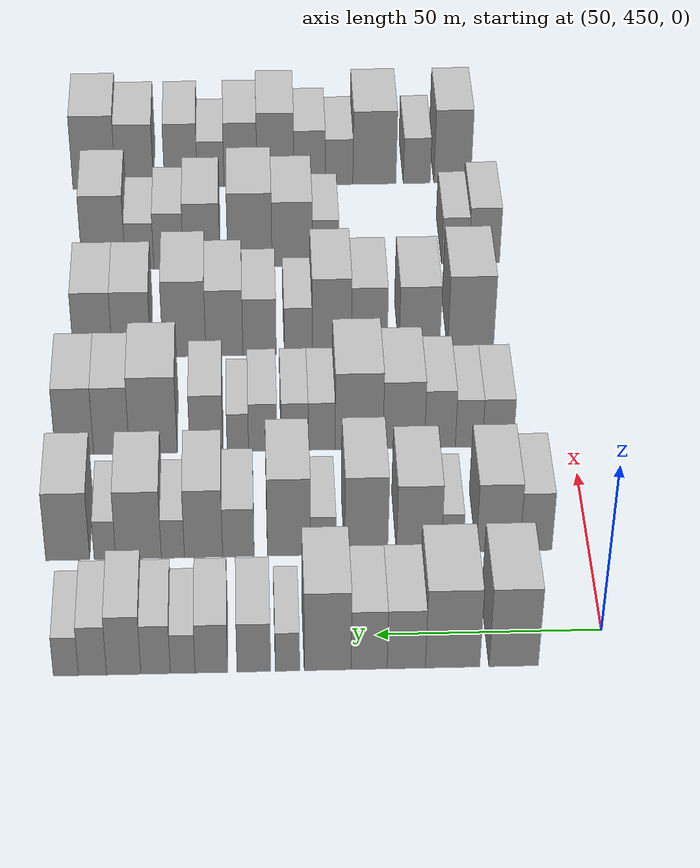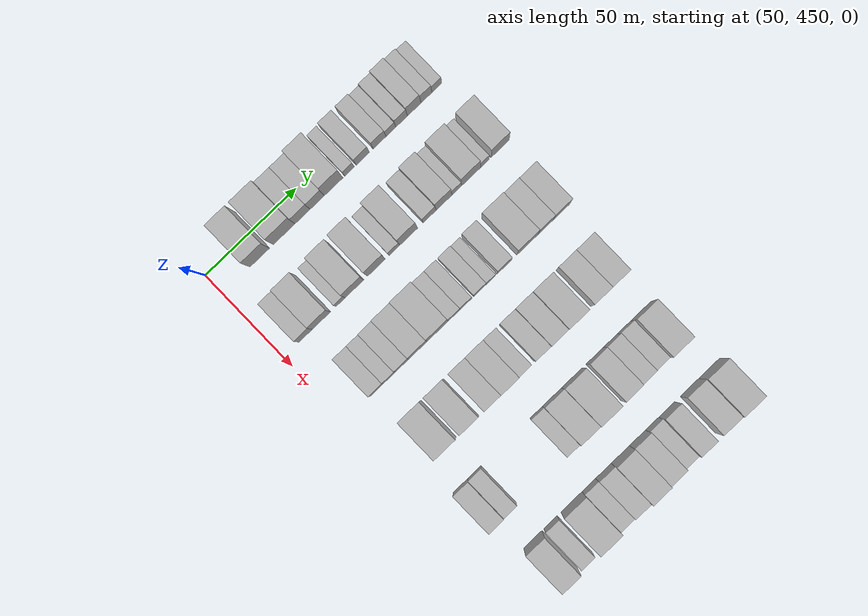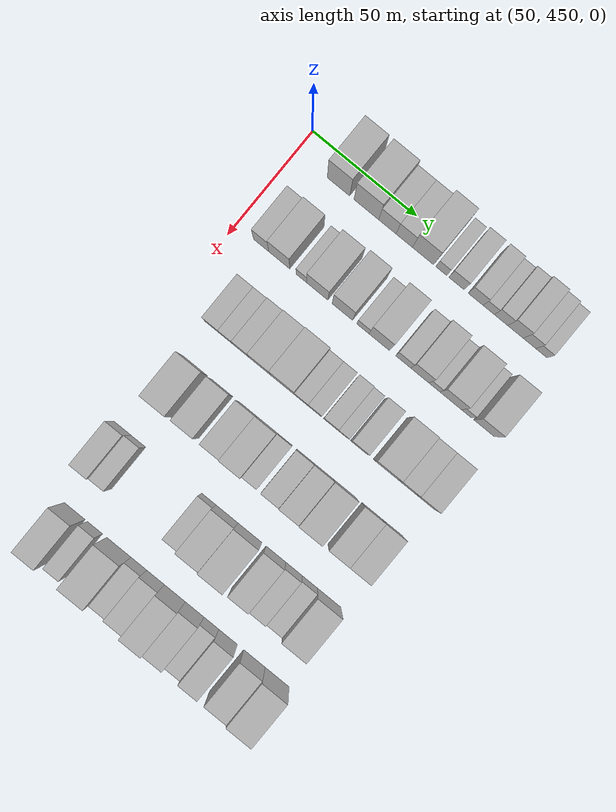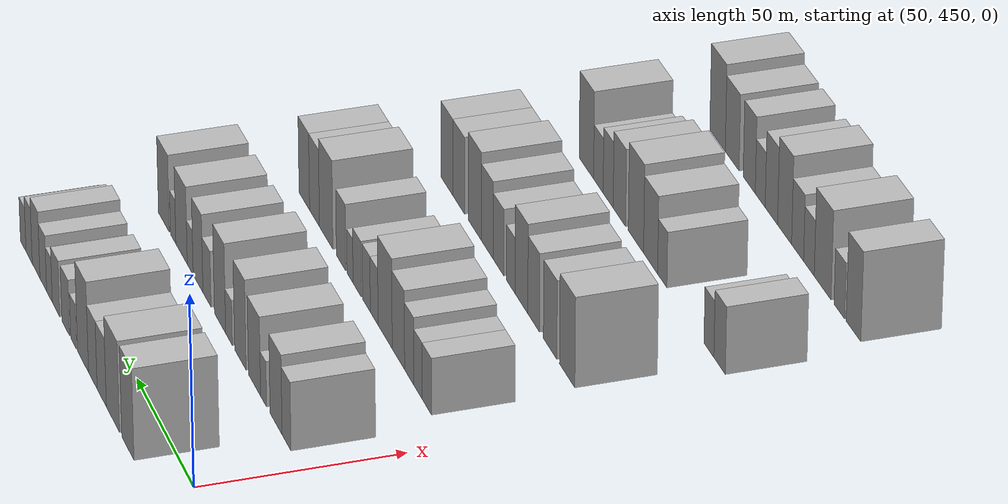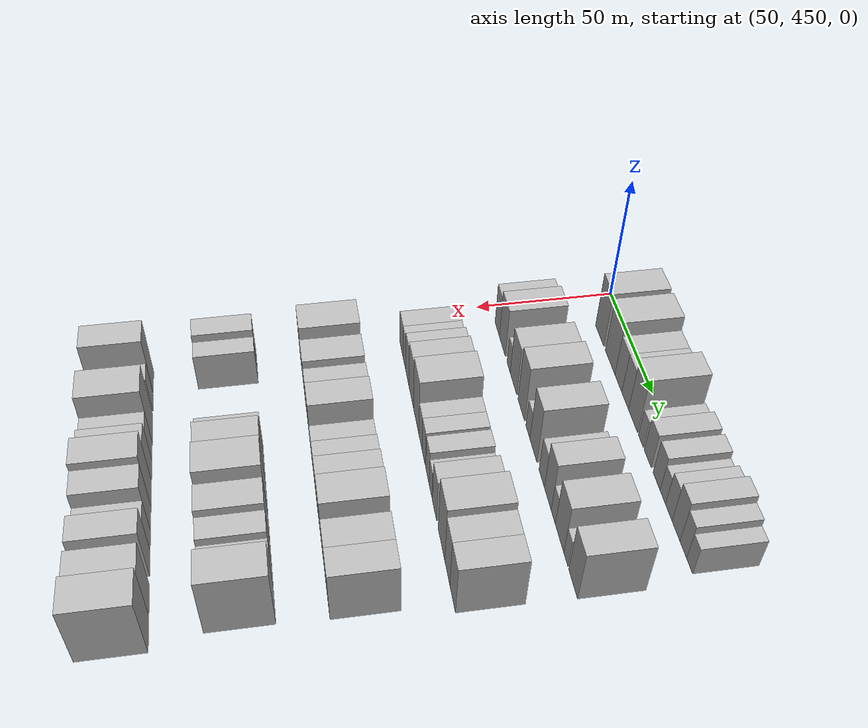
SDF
<sdf version="1.6">
 <world name="default">
  <model name="building_113">
   <static>1</static>
   <pose>50.0000 470.5471 0 0.000000 0.000000 0.000000</pose>
   <link name="link">
    <pose>0 0 12.00 0 0 0</pose>
    <collision name="collision"><geometry><box><size>20.0000 10.7727 24.0000</size></box></geometry></collision>
    <visual name="visual">
     <cast_shadows>0</cast_shadows>
     <geometry><box><size>20.0000 10.7727 24.0000</size></box></geometry>
     <material>
      <script>
       <uri>model://HANNAS_wall/materials/scripts</uri>
       <uri>model://HANNAS_wall/materials/textures</uri>
       <name>vrc/HANNAS_wall</name>
      </script>
     </material>
    </visual>
   </link>
  </model>
  <model name="building_114">
   <static>1</static>
   <pose>50.0000 483.8702 0 0.000000 0.000000 0.000000</pose>
   <link name="link">
    <pose>0 0 12.00 0 0 0</pose>
    <collision name="collision"><geometry><box><size>20.0000 11.8735 24.0000</size></box></geometry></collision>
    <visual name="visual">
     <cast_shadows>0</cast_shadows>
     <geometry><box><size>20.0000 11.8735 24.0000</size></box></geometry>
     <material>
      <script>
       <uri>model://HANNAS_wall/materials/scripts</uri>
       <uri>model://HANNAS_wall/materials/textures</uri>
       <name>vrc/HANNAS_wall</name>
      </script>
     </material>
    </visual>
   </link>
  </model>
  <model name="building_115">
   <static>1</static>
   <pose>50.0000 493.9722 0 0.000000 0.000000 0.000000</pose>
   <link name="link">
    <pose>0 0 9.00 0 0 0</pose>
    <collision name="collision"><geometry><box><size>20.0000 8.3305 18.0000</size></box></geometry></collision>
    <visual name="visual">
     <cast_shadows>0</cast_shadows>
     <geometry><box><size>20.0000 8.3305 18.0000</size></box></geometry>
     <material>
      <script>
       <uri>model://HANNAS_wall/materials/scripts</uri>
       <uri>model://HANNAS_wall/materials/textures</uri>
       <name>vrc/HANNAS_wall</name>
      </script>
     </material>
    </visual>
   </link>
  </model>
  <model name="building_116">
   <static>1</static>
   <pose>50.0000 502.0715 0 0.000000 0.000000 0.000000</pose>
   <link name="link">
    <pose>0 0 9.00 0 0 0</pose>
    <collision name="collision"><geometry><box><size>20.0000 7.8680 18.0000</size></box></geometry></collision>
    <visual name="visual">
     <cast_shadows>0</cast_shadows>
     <geometry><box><size>20.0000 7.8680 18.0000</size></box></geometry>
     <material>
      <script>
       <uri>model://HANNAS_wall/materials/scripts</uri>
       <uri>model://HANNAS_wall/materials/textures</uri>
       <name>vrc/HANNAS_wall</name>
      </script>
     </material>
    </visual>
   </link>
  </model>
  <model name="building_117">
   <static>1</static>
   <pose>50.0000 511.0846 0 0.000000 0.000000 0.000000</pose>
   <link name="link">
    <pose>0 0 12.00 0 0 0</pose>
    <collision name="collision"><geometry><box><size>20.0000 10.1583 24.0000</size></box></geometry></collision>
    <visual name="visual">
     <cast_shadows>0</cast_shadows>
     <geometry><box><size>20.0000 10.1583 24.0000</size></box></geometry>
     <material>
      <script>
       <uri>model://HANNAS_wall/materials/scripts</uri>
       <uri>model://HANNAS_wall/materials/textures</uri>
       <name>vrc/HANNAS_wall</name>
      </script>
     </material>
    </visual>
   </link>
  </model>
  <model name="building_118">
   <static>1</static>
   <pose>50.0000 519.8057 0 0.000000 0.000000 0.000000</pose>
   <link name="link">
    <pose>0 0 6.00 0 0 0</pose>
    <collision name="collision"><geometry><box><size>20.0000 5.2838 12.0000</size></box></geometry></collision>
    <visual name="visual">
     <cast_shadows>0</cast_shadows>
     <geometry><box><size>20.0000 5.2838 12.0000</size></box></geometry>
     <material>
      <script>
       <uri>model://HANNAS_wall/materials/scripts</uri>
       <uri>model://HANNAS_wall/materials/textures</uri>
       <name>vrc/HANNAS_wall</name>
      </script>
     </material>
    </visual>
   </link>
  </model>
  <model name="building_119">
   <static>1</static>
   <pose>50.0000 527.1045 0 0.000000 0.000000 0.000000</pose>
   <link name="link">
    <pose>0 0 7.50 0 0 0</pose>
    <collision name="collision"><geometry><box><size>20.0000 7.3138 15.0000</size></box></geometry></collision>
    <visual name="visual">
     <cast_shadows>0</cast_shadows>
     <geometry><box><size>20.0000 7.3138 15.0000</size></box></geometry>
     <material>
      <script>
       <uri>model://HANNAS_wall/materials/scripts</uri>
       <uri>model://HANNAS_wall/materials/textures</uri>
       <name>vrc/HANNAS_wall</name>
      </script>
     </material>
    </visual>
   </link>
  </model>
  <model name="building_120">
   <static>1</static>
   <pose>50.0000 536.3139 0 0.000000 0.000000 0.000000</pose>
   <link name="link">
    <pose>0 0 7.50 0 0 0</pose>
    <collision name="collision"><geometry><box><size>20.0000 7.1051 15.0000</size></box></geometry></collision>
    <visual name="visual">
     <cast_shadows>0</cast_shadows>
     <geometry><box><size>20.0000 7.1051 15.0000</size></box></geometry>
     <material>
      <script>
       <uri>model://HANNAS_wall/materials/scripts</uri>
       <uri>model://HANNAS_wall/materials/textures</uri>
       <name>vrc/HANNAS_wall</name>
      </script>
     </material>
    </visual>
   </link>
  </model>
  <model name="building_121">
   <static>1</static>
   <pose>50.0000 542.5565 0 0.000000 0.000000 0.000000</pose>
   <link name="link">
    <pose>0 0 6.00 0 0 0</pose>
    <collision name="collision"><geometry><box><size>20.0000 5.3800 12.0000</size></box></geometry></collision>
    <visual name="visual">
     <cast_shadows>0</cast_shadows>
     <geometry><box><size>20.0000 5.3800 12.0000</size></box></geometry>
     <material>
      <script>
       <uri>model://HANNAS_wall/materials/scripts</uri>
       <uri>model://HANNAS_wall/materials/textures</uri>
       <name>vrc/HANNAS_wall</name>
      </script>
     </material>
    </visual>
   </link>
  </model>
  <model name="building_122">
   <static>1</static>
   <pose>50.0000 548.4449 0 0.000000 0.000000 0.000000</pose>
   <link name="link">
    <pose>0 0 7.50 0 0 0</pose>
    <collision name="collision"><geometry><box><size>20.0000 6.3967 15.0000</size></box></geometry></collision>
    <visual name="visual">
     <cast_shadows>0</cast_shadows>
     <geometry><box><size>20.0000 6.3967 15.0000</size></box></geometry>
     <material>
      <script>
       <uri>model://HANNAS_wall/materials/scripts</uri>
       <uri>model://HANNAS_wall/materials/textures</uri>
       <name>vrc/HANNAS_wall</name>
      </script>
     </material>
    </visual>
   </link>
  </model>
  <model name="building_123">
   <static>1</static>
   <pose>50.0000 555.3638 0 0.000000 0.000000 0.000000</pose>
   <link name="link">
    <pose>0 0 9.00 0 0 0</pose>
    <collision name="collision"><geometry><box><size>20.0000 7.4411 18.0000</size></box></geometry></collision>
    <visual name="visual">
     <cast_shadows>0</cast_shadows>
     <geometry><box><size>20.0000 7.4411 18.0000</size></box></geometry>
     <material>
      <script>
       <uri>model://HANNAS_wall/materials/scripts</uri>
       <uri>model://HANNAS_wall/materials/textures</uri>
       <name>vrc/HANNAS_wall</name>
      </script>
     </material>
    </visual>
   </link>
  </model>
  <model name="building_124">
   <static>1</static>
   <pose>50.0000 562.1249 0 0.000000 0.000000 0.000000</pose>
   <link name="link">
    <pose>0 0 7.50 0 0 0</pose>
    <collision name="collision"><geometry><box><size>20.0000 6.0810 15.0000</size></box></geometry></collision>
    <visual name="visual">
     <cast_shadows>0</cast_shadows>
     <geometry><box><size>20.0000 6.0810 15.0000</size></box></geometry>
     <material>
      <script>
       <uri>model://HANNAS_wall/materials/scripts</uri>
       <uri>model://HANNAS_wall/materials/textures</uri>
       <name>vrc/HANNAS_wall</name>
      </script>
     </material>
    </visual>
   </link>
  </model>
  <model name="building_125">
   <static>1</static>
   <pose>50.0000 567.8764 0 0.000000 0.000000 0.000000</pose>
   <link name="link">
    <pose>0 0 6.00 0 0 0</pose>
    <collision name="collision"><geometry><box><size>20.0000 5.4219 12.0000</size></box></geometry></collision>
    <visual name="visual">
     <cast_shadows>0</cast_shadows>
     <geometry><box><size>20.0000 5.4219 12.0000</size></box></geometry>
     <material>
      <script>
       <uri>model://HANNAS_wall/materials/scripts</uri>
       <uri>model://HANNAS_wall/materials/textures</uri>
       <name>vrc/HANNAS_wall</name>
      </script>
     </material>
    </visual>
   </link>
  </model>
  <model name="building_241">
   <static>1</static>
   <pose>85.0000 462.2460 0 0.000000 0.000000 0.000000</pose>
   <link name="link">
    <pose>0 0 9.00 0 0 0</pose>
    <collision name="collision"><geometry><box><size>20.0000 7.3072 18.0000</size></box></geometry></collision>
    <visual name="visual">
     <cast_shadows>0</cast_shadows>
     <geometry><box><size>20.0000 7.3072 18.0000</size></box></geometry>
     <material>
      <script>
       <uri>model://HANNAS_wall/materials/scripts</uri>
       <uri>model://HANNAS_wall/materials/textures</uri>
       <name>vrc/HANNAS_wall</name>
      </script>
     </material>
    </visual>
   </link>
  </model>
  <model name="building_242">
   <static>1</static>
   <pose>85.0000 470.9040 0 0.000000 0.000000 0.000000</pose>
   <link name="link">
    <pose>0 0 10.50 0 0 0</pose>
    <collision name="collision"><geometry><box><size>20.0000 10.0088 21.0000</size></box></geometry></collision>
    <visual name="visual">
     <cast_shadows>0</cast_shadows>
     <geometry><box><size>20.0000 10.0088 21.0000</size></box></geometry>
     <material>
      <script>
       <uri>model://HANNAS_wall/materials/scripts</uri>
       <uri>model://HANNAS_wall/materials/textures</uri>
       <name>vrc/HANNAS_wall</name>
      </script>
     </material>
    </visual>
   </link>
  </model>
  <model name="building_243">
   <static>1</static>
   <pose>85.0000 481.3888 0 0.000000 0.000000 0.000000</pose>
   <link name="link">
    <pose>0 0 6.00 0 0 0</pose>
    <collision name="collision"><geometry><box><size>20.0000 4.9607 12.0000</size></box></geometry></collision>
    <visual name="visual">
     <cast_shadows>0</cast_shadows>
     <geometry><box><size>20.0000 4.9607 12.0000</size></box></geometry>
     <material>
      <script>
       <uri>model://HANNAS_wall/materials/scripts</uri>
       <uri>model://HANNAS_wall/materials/textures</uri>
       <name>vrc/HANNAS_wall</name>
      </script>
     </material>
    </visual>
   </link>
  </model>
  <model name="building_244">
   <static>1</static>
   <pose>85.0000 489.0123 0 0.000000 0.000000 0.000000</pose>
   <link name="link">
    <pose>0 0 10.50 0 0 0</pose>
    <collision name="collision"><geometry><box><size>20.0000 10.2861 21.0000</size></box></geometry></collision>
    <visual name="visual">
     <cast_shadows>0</cast_shadows>
     <geometry><box><size>20.0000 10.2861 21.0000</size></box></geometry>
     <material>
      <script>
       <uri>model://HANNAS_wall/materials/scripts</uri>
       <uri>model://HANNAS_wall/materials/textures</uri>
       <name>vrc/HANNAS_wall</name>
      </script>
     </material>
    </visual>
   </link>
  </model>
  <model name="building_245">
   <static>1</static>
   <pose>85.0000 501.0741 0 0.000000 0.000000 0.000000</pose>
   <link name="link">
    <pose>0 0 12.00 0 0 0</pose>
    <collision name="collision"><geometry><box><size>20.0000 9.8375 24.0000</size></box></geometry></collision>
    <visual name="visual">
     <cast_shadows>0</cast_shadows>
     <geometry><box><size>20.0000 9.8375 24.0000</size></box></geometry>
     <material>
      <script>
       <uri>model://HANNAS_wall/materials/scripts</uri>
       <uri>model://HANNAS_wall/materials/textures</uri>
       <name>vrc/HANNAS_wall</name>
      </script>
     </material>
    </visual>
   </link>
  </model>
  <model name="building_246">
   <static>1</static>
   <pose>85.0000 510.9015 0 0.000000 0.000000 0.000000</pose>
   <link name="link">
    <pose>0 0 6.00 0 0 0</pose>
    <collision name="collision"><geometry><box><size>20.0000 5.8173 12.0000</size></box></geometry></collision>
    <visual name="visual">
     <cast_shadows>0</cast_shadows>
     <geometry><box><size>20.0000 5.8173 12.0000</size></box></geometry>
     <material>
      <script>
       <uri>model://HANNAS_wall/materials/scripts</uri>
       <uri>model://HANNAS_wall/materials/textures</uri>
       <name>vrc/HANNAS_wall</name>
      </script>
     </material>
    </visual>
   </link>
  </model>
  <model name="building_247">
   <static>1</static>
   <pose>85.0000 518.7040 0 0.000000 0.000000 0.000000</pose>
   <link name="link">
    <pose>0 0 12.00 0 0 0</pose>
    <collision name="collision"><geometry><box><size>20.0000 9.7877 24.0000</size></box></geometry></collision>
    <visual name="visual">
     <cast_shadows>0</cast_shadows>
     <geometry><box><size>20.0000 9.7877 24.0000</size></box></geometry>
     <material>
      <script>
       <uri>model://HANNAS_wall/materials/scripts</uri>
       <uri>model://HANNAS_wall/materials/textures</uri>
       <name>vrc/HANNAS_wall</name>
      </script>
     </material>
    </visual>
   </link>
  </model>
  <model name="building_248">
   <static>1</static>
   <pose>85.0000 530.1975 0 0.000000 0.000000 0.000000</pose>
   <link name="link">
    <pose>0 0 7.50 0 0 0</pose>
    <collision name="collision"><geometry><box><size>20.0000 7.1994 15.0000</size></box></geometry></collision>
    <visual name="visual">
     <cast_shadows>0</cast_shadows>
     <geometry><box><size>20.0000 7.1994 15.0000</size></box></geometry>
     <material>
      <script>
       <uri>model://HANNAS_wall/materials/scripts</uri>
       <uri>model://HANNAS_wall/materials/textures</uri>
       <name>vrc/HANNAS_wall</name>
      </script>
     </material>
    </visual>
   </link>
  </model>
  <model name="building_249">
   <static>1</static>
   <pose>85.0000 538.1557 0 0.000000 0.000000 0.000000</pose>
   <link name="link">
    <pose>0 0 10.50 0 0 0</pose>
    <collision name="collision"><geometry><box><size>20.0000 8.7171 21.0000</size></box></geometry></collision>
    <visual name="visual">
     <cast_shadows>0</cast_shadows>
     <geometry><box><size>20.0000 8.7171 21.0000</size></box></geometry>
     <material>
      <script>
       <uri>model://HANNAS_wall/materials/scripts</uri>
       <uri>model://HANNAS_wall/materials/textures</uri>
       <name>vrc/HANNAS_wall</name>
      </script>
     </material>
    </visual>
   </link>
  </model>
  <model name="building_250">
   <static>1</static>
   <pose>85.0000 545.1428 0 0.000000 0.000000 0.000000</pose>
   <link name="link">
    <pose>0 0 6.00 0 0 0</pose>
    <collision name="collision"><geometry><box><size>20.0000 5.2572 12.0000</size></box></geometry></collision>
    <visual name="visual">
     <cast_shadows>0</cast_shadows>
     <geometry><box><size>20.0000 5.2572 12.0000</size></box></geometry>
     <material>
      <script>
       <uri>model://HANNAS_wall/materials/scripts</uri>
       <uri>model://HANNAS_wall/materials/textures</uri>
       <name>vrc/HANNAS_wall</name>
      </script>
     </material>
    </visual>
   </link>
  </model>
  <model name="building_251">
   <static>1</static>
   <pose>85.0000 552.9598 0 0.000000 0.000000 0.000000</pose>
   <link name="link">
    <pose>0 0 10.50 0 0 0</pose>
    <collision name="collision"><geometry><box><size>20.0000 10.3769 21.0000</size></box></geometry></collision>
    <visual name="visual">
     <cast_shadows>0</cast_shadows>
     <geometry><box><size>20.0000 10.3769 21.0000</size></box></geometry>
     <material>
      <script>
       <uri>model://HANNAS_wall/materials/scripts</uri>
       <uri>model://HANNAS_wall/materials/textures</uri>
       <name>vrc/HANNAS_wall</name>
      </script>
     </material>
    </visual>
   </link>
  </model>
  <model name="building_252">
   <static>1</static>
   <pose>85.0000 560.5958 0 0.000000 0.000000 0.000000</pose>
   <link name="link">
    <pose>0 0 6.00 0 0 0</pose>
    <collision name="collision"><geometry><box><size>20.0000 4.8951 12.0000</size></box></geometry></collision>
    <visual name="visual">
     <cast_shadows>0</cast_shadows>
     <geometry><box><size>20.0000 4.8951 12.0000</size></box></geometry>
     <material>
      <script>
       <uri>model://HANNAS_wall/materials/scripts</uri>
       <uri>model://HANNAS_wall/materials/textures</uri>
       <name>vrc/HANNAS_wall</name>
      </script>
     </material>
    </visual>
   </link>
  </model>
  <model name="building_253">
   <static>1</static>
   <pose>85.0000 569.0360 0 0.000000 0.000000 0.000000</pose>
   <link name="link">
    <pose>0 0 10.50 0 0 0</pose>
    <collision name="collision"><geometry><box><size>20.0000 9.9852 21.0000</size></box></geometry></collision>
    <visual name="visual">
     <cast_shadows>0</cast_shadows>
     <geometry><box><size>20.0000 9.9852 21.0000</size></box></geometry>
     <material>
      <script>
       <uri>model://HANNAS_wall/materials/scripts</uri>
       <uri>model://HANNAS_wall/materials/textures</uri>
       <name>vrc/HANNAS_wall</name>
      </script>
     </material>
    </visual>
   </link>
  </model>
  <model name="building_377">
   <static>1</static>
   <pose>120.0000 467.8913 0 0.000000 0.000000 0.000000</pose>
   <link name="link">
    <pose>0 0 7.50 0 0 0</pose>
    <collision name="collision"><geometry><box><size>20.0000 7.4111 15.0000</size></box></geometry></collision>
    <visual name="visual">
     <cast_shadows>0</cast_shadows>
     <geometry><box><size>20.0000 7.4111 15.0000</size></box></geometry>
     <material>
      <script>
       <uri>model://HANNAS_wall/materials/scripts</uri>
       <uri>model://HANNAS_wall/materials/textures</uri>
       <name>vrc/HANNAS_wall</name>
      </script>
     </material>
    </visual>
   </link>
  </model>
  <model name="building_378">
   <static>1</static>
   <pose>120.0000 474.8632 0 0.000000 0.000000 0.000000</pose>
   <link name="link">
    <pose>0 0 7.50 0 0 0</pose>
    <collision name="collision"><geometry><box><size>20.0000 6.5326 15.0000</size></box></geometry></collision>
    <visual name="visual">
     <cast_shadows>0</cast_shadows>
     <geometry><box><size>20.0000 6.5326 15.0000</size></box></geometry>
     <material>
      <script>
       <uri>model://HANNAS_wall/materials/scripts</uri>
       <uri>model://HANNAS_wall/materials/textures</uri>
       <name>vrc/HANNAS_wall</name>
      </script>
     </material>
    </visual>
   </link>
  </model>
  <model name="building_379">
   <static>1</static>
   <pose>120.0000 481.8213 0 0.000000 0.000000 0.000000</pose>
   <link name="link">
    <pose>0 0 9.00 0 0 0</pose>
    <collision name="collision"><geometry><box><size>20.0000 7.3835 18.0000</size></box></geometry></collision>
    <visual name="visual">
     <cast_shadows>0</cast_shadows>
     <geometry><box><size>20.0000 7.3835 18.0000</size></box></geometry>
     <material>
      <script>
       <uri>model://HANNAS_wall/materials/scripts</uri>
       <uri>model://HANNAS_wall/materials/textures</uri>
       <name>vrc/HANNAS_wall</name>
      </script>
     </material>
    </visual>
   </link>
  </model>
  <model name="building_380">
   <static>1</static>
   <pose>120.0000 490.4864 0 0.000000 0.000000 0.000000</pose>
   <link name="link">
    <pose>0 0 10.50 0 0 0</pose>
    <collision name="collision"><geometry><box><size>20.0000 9.9467 21.0000</size></box></geometry></collision>
    <visual name="visual">
     <cast_shadows>0</cast_shadows>
     <geometry><box><size>20.0000 9.9467 21.0000</size></box></geometry>
     <material>
      <script>
       <uri>model://HANNAS_wall/materials/scripts</uri>
       <uri>model://HANNAS_wall/materials/textures</uri>
       <name>vrc/HANNAS_wall</name>
      </script>
     </material>
    </visual>
   </link>
  </model>
  <model name="building_381">
   <static>1</static>
   <pose>120.0000 501.1858 0 0.000000 0.000000 0.000000</pose>
   <link name="link">
    <pose>0 0 12.00 0 0 0</pose>
    <collision name="collision"><geometry><box><size>20.0000 11.4522 24.0000</size></box></geometry></collision>
    <visual name="visual">
     <cast_shadows>0</cast_shadows>
     <geometry><box><size>20.0000 11.4522 24.0000</size></box></geometry>
     <material>
      <script>
       <uri>model://HANNAS_wall/materials/scripts</uri>
       <uri>model://HANNAS_wall/materials/textures</uri>
       <name>vrc/HANNAS_wall</name>
      </script>
     </material>
    </visual>
   </link>
  </model>
  <model name="building_382">
   <static>1</static>
   <pose>120.0000 510.1151 0 0.000000 0.000000 0.000000</pose>
   <link name="link">
    <pose>0 0 7.50 0 0 0</pose>
    <collision name="collision"><geometry><box><size>20.0000 6.4064 15.0000</size></box></geometry></collision>
    <visual name="visual">
     <cast_shadows>0</cast_shadows>
     <geometry><box><size>20.0000 6.4064 15.0000</size></box></geometry>
     <material>
      <script>
       <uri>model://HANNAS_wall/materials/scripts</uri>
       <uri>model://HANNAS_wall/materials/textures</uri>
       <name>vrc/HANNAS_wall</name>
      </script>
     </material>
    </visual>
   </link>
  </model>
  <model name="building_383">
   <static>1</static>
   <pose>120.0000 516.5223 0 0.000000 0.000000 0.000000</pose>
   <link name="link">
    <pose>0 0 7.50 0 0 0</pose>
    <collision name="collision"><geometry><box><size>20.0000 6.4080 15.0000</size></box></geometry></collision>
    <visual name="visual">
     <cast_shadows>0</cast_shadows>
     <geometry><box><size>20.0000 6.4080 15.0000</size></box></geometry>
     <material>
      <script>
       <uri>model://HANNAS_wall/materials/scripts</uri>
       <uri>model://HANNAS_wall/materials/textures</uri>
       <name>vrc/HANNAS_wall</name>
      </script>
     </material>
    </visual>
   </link>
  </model>
  <model name="building_384">
   <static>1</static>
   <pose>120.0000 524.1342 0 0.000000 0.000000 0.000000</pose>
   <link name="link">
    <pose>0 0 7.50 0 0 0</pose>
    <collision name="collision"><geometry><box><size>20.0000 6.8159 15.0000</size></box></geometry></collision>
    <visual name="visual">
     <cast_shadows>0</cast_shadows>
     <geometry><box><size>20.0000 6.8159 15.0000</size></box></geometry>
     <material>
      <script>
       <uri>model://HANNAS_wall/materials/scripts</uri>
       <uri>model://HANNAS_wall/materials/textures</uri>
       <name>vrc/HANNAS_wall</name>
      </script>
     </material>
    </visual>
   </link>
  </model>
  <model name="building_385">
   <static>1</static>
   <pose>120.0000 530.0944 0 0.000000 0.000000 0.000000</pose>
   <link name="link">
    <pose>0 0 6.00 0 0 0</pose>
    <collision name="collision"><geometry><box><size>20.0000 5.1045 12.0000</size></box></geometry></collision>
    <visual name="visual">
     <cast_shadows>0</cast_shadows>
     <geometry><box><size>20.0000 5.1045 12.0000</size></box></geometry>
     <material>
      <script>
       <uri>model://HANNAS_wall/materials/scripts</uri>
       <uri>model://HANNAS_wall/materials/textures</uri>
       <name>vrc/HANNAS_wall</name>
      </script>
     </material>
    </visual>
   </link>
  </model>
  <model name="building_386">
   <static>1</static>
   <pose>120.0000 537.5939 0 0.000000 0.000000 0.000000</pose>
   <link name="link">
    <pose>0 0 9.00 0 0 0</pose>
    <collision name="collision"><geometry><box><size>20.0000 7.8945 18.0000</size></box></geometry></collision>
    <visual name="visual">
     <cast_shadows>0</cast_shadows>
     <geometry><box><size>20.0000 7.8945 18.0000</size></box></geometry>
     <material>
      <script>
       <uri>model://HANNAS_wall/materials/scripts</uri>
       <uri>model://HANNAS_wall/materials/textures</uri>
       <name>vrc/HANNAS_wall</name>
      </script>
     </material>
    </visual>
   </link>
  </model>
  <model name="building_387">
   <static>1</static>
   <pose>120.0000 550.2483 0 0.000000 0.000000 0.000000</pose>
   <link name="link">
    <pose>0 0 12.00 0 0 0</pose>
    <collision name="collision"><geometry><box><size>20.0000 11.4144 24.0000</size></box></geometry></collision>
    <visual name="visual">
     <cast_shadows>0</cast_shadows>
     <geometry><box><size>20.0000 11.4144 24.0000</size></box></geometry>
     <material>
      <script>
       <uri>model://HANNAS_wall/materials/scripts</uri>
       <uri>model://HANNAS_wall/materials/textures</uri>
       <name>vrc/HANNAS_wall</name>
      </script>
     </material>
    </visual>
   </link>
  </model>
  <model name="building_388">
   <static>1</static>
   <pose>120.0000 560.2049 0 0.000000 0.000000 0.000000</pose>
   <link name="link">
    <pose>0 0 10.50 0 0 0</pose>
    <collision name="collision"><geometry><box><size>20.0000 8.4989 21.0000</size></box></geometry></collision>
    <visual name="visual">
     <cast_shadows>0</cast_shadows>
     <geometry><box><size>20.0000 8.4989 21.0000</size></box></geometry>
     <material>
      <script>
       <uri>model://HANNAS_wall/materials/scripts</uri>
       <uri>model://HANNAS_wall/materials/textures</uri>
       <name>vrc/HANNAS_wall</name>
      </script>
     </material>
    </visual>
   </link>
  </model>
  <model name="building_389">
   <static>1</static>
   <pose>120.0000 569.0181 0 0.000000 0.000000 0.000000</pose>
   <link name="link">
    <pose>0 0 10.50 0 0 0</pose>
    <collision name="collision"><geometry><box><size>20.0000 9.1274 21.0000</size></box></geometry></collision>
    <visual name="visual">
     <cast_shadows>0</cast_shadows>
     <geometry><box><size>20.0000 9.1274 21.0000</size></box></geometry>
     <material>
      <script>
       <uri>model://HANNAS_wall/materials/scripts</uri>
       <uri>model://HANNAS_wall/materials/textures</uri>
       <name>vrc/HANNAS_wall</name>
      </script>
     </material>
    </visual>
   </link>
  </model>
  <model name="building_507">
   <static>1</static>
   <pose>155.0000 471.7294 0 0.000000 0.000000 0.000000</pose>
   <link name="link">
    <pose>0 0 12.00 0 0 0</pose>
    <collision name="collision"><geometry><box><size>20.0000 11.4543 24.0000</size></box></geometry></collision>
    <visual name="visual">
     <cast_shadows>0</cast_shadows>
     <geometry><box><size>20.0000 11.4543 24.0000</size></box></geometry>
     <material>
      <script>
       <uri>model://HANNAS_wall/materials/scripts</uri>
       <uri>model://HANNAS_wall/materials/textures</uri>
       <name>vrc/HANNAS_wall</name>
      </script>
     </material>
    </visual>
   </link>
  </model>
  <model name="building_508">
   <static>1</static>
   <pose>155.0000 484.5429 0 0.000000 0.000000 0.000000</pose>
   <link name="link">
    <pose>0 0 10.50 0 0 0</pose>
    <collision name="collision"><geometry><box><size>20.0000 10.1728 21.0000</size></box></geometry></collision>
    <visual name="visual">
     <cast_shadows>0</cast_shadows>
     <geometry><box><size>20.0000 10.1728 21.0000</size></box></geometry>
     <material>
      <script>
       <uri>model://HANNAS_wall/materials/scripts</uri>
       <uri>model://HANNAS_wall/materials/textures</uri>
       <name>vrc/HANNAS_wall</name>
      </script>
     </material>
    </visual>
   </link>
  </model>
  <model name="building_509">
   <static>1</static>
   <pose>155.0000 497.1041 0 0.000000 0.000000 0.000000</pose>
   <link name="link">
    <pose>0 0 10.50 0 0 0</pose>
    <collision name="collision"><geometry><box><size>20.0000 8.9495 21.0000</size></box></geometry></collision>
    <visual name="visual">
     <cast_shadows>0</cast_shadows>
     <geometry><box><size>20.0000 8.9495 21.0000</size></box></geometry>
     <material>
      <script>
       <uri>model://HANNAS_wall/materials/scripts</uri>
       <uri>model://HANNAS_wall/materials/textures</uri>
       <name>vrc/HANNAS_wall</name>
      </script>
     </material>
    </visual>
   </link>
  </model>
  <model name="building_510">
   <static>1</static>
   <pose>155.0000 506.4658 0 0.000000 0.000000 0.000000</pose>
   <link name="link">
    <pose>0 0 12.00 0 0 0</pose>
    <collision name="collision"><geometry><box><size>20.0000 9.7741 24.0000</size></box></geometry></collision>
    <visual name="visual">
     <cast_shadows>0</cast_shadows>
     <geometry><box><size>20.0000 9.7741 24.0000</size></box></geometry>
     <material>
      <script>
       <uri>model://HANNAS_wall/materials/scripts</uri>
       <uri>model://HANNAS_wall/materials/textures</uri>
       <name>vrc/HANNAS_wall</name>
      </script>
     </material>
    </visual>
   </link>
  </model>
  <model name="building_511">
   <static>1</static>
   <pose>155.0000 514.8005 0 0.000000 0.000000 0.000000</pose>
   <link name="link">
    <pose>0 0 7.50 0 0 0</pose>
    <collision name="collision"><geometry><box><size>20.0000 6.8952 15.0000</size></box></geometry></collision>
    <visual name="visual">
     <cast_shadows>0</cast_shadows>
     <geometry><box><size>20.0000 6.8952 15.0000</size></box></geometry>
     <material>
      <script>
       <uri>model://HANNAS_wall/materials/scripts</uri>
       <uri>model://HANNAS_wall/materials/textures</uri>
       <name>vrc/HANNAS_wall</name>
      </script>
     </material>
    </visual>
   </link>
  </model>
  <model name="building_512">
   <static>1</static>
   <pose>155.0000 524.4166 0 0.000000 0.000000 0.000000</pose>
   <link name="link">
    <pose>0 0 9.00 0 0 0</pose>
    <collision name="collision"><geometry><box><size>20.0000 8.3370 18.0000</size></box></geometry></collision>
    <visual name="visual">
     <cast_shadows>0</cast_shadows>
     <geometry><box><size>20.0000 8.3370 18.0000</size></box></geometry>
     <material>
      <script>
       <uri>model://HANNAS_wall/materials/scripts</uri>
       <uri>model://HANNAS_wall/materials/textures</uri>
       <name>vrc/HANNAS_wall</name>
      </script>
     </material>
    </visual>
   </link>
  </model>
  <model name="building_513">
   <static>1</static>
   <pose>155.0000 533.1909 0 0.000000 0.000000 0.000000</pose>
   <link name="link">
    <pose>0 0 10.50 0 0 0</pose>
    <collision name="collision"><geometry><box><size>20.0000 9.2116 21.0000</size></box></geometry></collision>
    <visual name="visual">
     <cast_shadows>0</cast_shadows>
     <geometry><box><size>20.0000 9.2116 21.0000</size></box></geometry>
     <material>
      <script>
       <uri>model://HANNAS_wall/materials/scripts</uri>
       <uri>model://HANNAS_wall/materials/textures</uri>
       <name>vrc/HANNAS_wall</name>
      </script>
     </material>
    </visual>
   </link>
  </model>
  <model name="building_514">
   <static>1</static>
   <pose>155.0000 543.1493 0 0.000000 0.000000 0.000000</pose>
   <link name="link">
    <pose>0 0 12.00 0 0 0</pose>
    <collision name="collision"><geometry><box><size>20.0000 10.7051 24.0000</size></box></geometry></collision>
    <visual name="visual">
     <cast_shadows>0</cast_shadows>
     <geometry><box><size>20.0000 10.7051 24.0000</size></box></geometry>
     <material>
      <script>
       <uri>model://HANNAS_wall/materials/scripts</uri>
       <uri>model://HANNAS_wall/materials/textures</uri>
       <name>vrc/HANNAS_wall</name>
      </script>
     </material>
    </visual>
   </link>
  </model>
  <model name="building_515">
   <static>1</static>
   <pose>155.0000 556.2933 0 0.000000 0.000000 0.000000</pose>
   <link name="link">
    <pose>0 0 10.50 0 0 0</pose>
    <collision name="collision"><geometry><box><size>20.0000 9.5829 21.0000</size></box></geometry></collision>
    <visual name="visual">
     <cast_shadows>0</cast_shadows>
     <geometry><box><size>20.0000 9.5829 21.0000</size></box></geometry>
     <material>
      <script>
       <uri>model://HANNAS_wall/materials/scripts</uri>
       <uri>model://HANNAS_wall/materials/textures</uri>
       <name>vrc/HANNAS_wall</name>
      </script>
     </material>
    </visual>
   </link>
  </model>
  <model name="building_516">
   <static>1</static>
   <pose>155.0000 565.9023 0 0.000000 0.000000 0.000000</pose>
   <link name="link">
    <pose>0 0 10.50 0 0 0</pose>
    <collision name="collision"><geometry><box><size>20.0000 9.6351 21.0000</size></box></geometry></collision>
    <visual name="visual">
     <cast_shadows>0</cast_shadows>
     <geometry><box><size>20.0000 9.6351 21.0000</size></box></geometry>
     <material>
      <script>
       <uri>model://HANNAS_wall/materials/scripts</uri>
       <uri>model://HANNAS_wall/materials/textures</uri>
       <name>vrc/HANNAS_wall</name>
      </script>
     </material>
    </visual>
   </link>
  </model>
  <model name="building_623">
   <static>1</static>
   <pose>190.0000 465.4395 0 0.000000 0.000000 0.000000</pose>
   <link name="link">
    <pose>0 0 9.00 0 0 0</pose>
    <collision name="collision"><geometry><box><size>20.0000 8.0797 18.0000</size></box></geometry></collision>
    <visual name="visual">
     <cast_shadows>0</cast_shadows>
     <geometry><box><size>20.0000 8.0797 18.0000</size></box></geometry>
     <material>
      <script>
       <uri>model://HANNAS_wall/materials/scripts</uri>
       <uri>model://HANNAS_wall/materials/textures</uri>
       <name>vrc/HANNAS_wall</name>
      </script>
     </material>
    </visual>
   </link>
  </model>
  <model name="building_624">
   <static>1</static>
   <pose>190.0000 473.0043 0 0.000000 0.000000 0.000000</pose>
   <link name="link">
    <pose>0 0 7.50 0 0 0</pose>
    <collision name="collision"><geometry><box><size>20.0000 7.0498 15.0000</size></box></geometry></collision>
    <visual name="visual">
     <cast_shadows>0</cast_shadows>
     <geometry><box><size>20.0000 7.0498 15.0000</size></box></geometry>
     <material>
      <script>
       <uri>model://HANNAS_wall/materials/scripts</uri>
       <uri>model://HANNAS_wall/materials/textures</uri>
       <name>vrc/HANNAS_wall</name>
      </script>
     </material>
    </visual>
   </link>
  </model>
  <model name="building_625">
   <static>1</static>
   <pose>190.0000 506.8162 0 0.000000 0.000000 0.000000</pose>
   <link name="link">
    <pose>0 0 7.50 0 0 0</pose>
    <collision name="collision"><geometry><box><size>20.0000 6.8580 15.0000</size></box></geometry></collision>
    <visual name="visual">
     <cast_shadows>0</cast_shadows>
     <geometry><box><size>20.0000 6.8580 15.0000</size></box></geometry>
     <material>
      <script>
       <uri>model://HANNAS_wall/materials/scripts</uri>
       <uri>model://HANNAS_wall/materials/textures</uri>
       <name>vrc/HANNAS_wall</name>
      </script>
     </material>
    </visual>
   </link>
  </model>
  <model name="building_626">
   <static>1</static>
   <pose>190.0000 515.4928 0 0.000000 0.000000 0.000000</pose>
   <link name="link">
    <pose>0 0 10.50 0 0 0</pose>
    <collision name="collision"><geometry><box><size>20.0000 10.4950 21.0000</size></box></geometry></collision>
    <visual name="visual">
     <cast_shadows>0</cast_shadows>
     <geometry><box><size>20.0000 10.4950 21.0000</size></box></geometry>
     <material>
      <script>
       <uri>model://HANNAS_wall/materials/scripts</uri>
       <uri>model://HANNAS_wall/materials/textures</uri>
       <name>vrc/HANNAS_wall</name>
      </script>
     </material>
    </visual>
   </link>
  </model>
  <model name="building_627">
   <static>1</static>
   <pose>190.0000 526.4720 0 0.000000 0.000000 0.000000</pose>
   <link name="link">
    <pose>0 0 12.00 0 0 0</pose>
    <collision name="collision"><geometry><box><size>20.0000 11.4635 24.0000</size></box></geometry></collision>
    <visual name="visual">
     <cast_shadows>0</cast_shadows>
     <geometry><box><size>20.0000 11.4635 24.0000</size></box></geometry>
     <material>
      <script>
       <uri>model://HANNAS_wall/materials/scripts</uri>
       <uri>model://HANNAS_wall/materials/textures</uri>
       <name>vrc/HANNAS_wall</name>
      </script>
     </material>
    </visual>
   </link>
  </model>
  <model name="building_628">
   <static>1</static>
   <pose>190.0000 538.9534 0 0.000000 0.000000 0.000000</pose>
   <link name="link">
    <pose>0 0 10.50 0 0 0</pose>
    <collision name="collision"><geometry><box><size>20.0000 9.4992 21.0000</size></box></geometry></collision>
    <visual name="visual">
     <cast_shadows>0</cast_shadows>
     <geometry><box><size>20.0000 9.4992 21.0000</size></box></geometry>
     <material>
      <script>
       <uri>model://HANNAS_wall/materials/scripts</uri>
       <uri>model://HANNAS_wall/materials/textures</uri>
       <name>vrc/HANNAS_wall</name>
      </script>
     </material>
    </visual>
   </link>
  </model>
  <model name="building_629">
   <static>1</static>
   <pose>190.0000 547.5561 0 0.000000 0.000000 0.000000</pose>
   <link name="link">
    <pose>0 0 9.00 0 0 0</pose>
    <collision name="collision"><geometry><box><size>20.0000 7.7062 18.0000</size></box></geometry></collision>
    <visual name="visual">
     <cast_shadows>0</cast_shadows>
     <geometry><box><size>20.0000 7.7062 18.0000</size></box></geometry>
     <material>
      <script>
       <uri>model://HANNAS_wall/materials/scripts</uri>
       <uri>model://HANNAS_wall/materials/textures</uri>
       <name>vrc/HANNAS_wall</name>
      </script>
     </material>
    </visual>
   </link>
  </model>
  <model name="building_630">
   <static>1</static>
   <pose>190.0000 555.1040 0 0.000000 0.000000 0.000000</pose>
   <link name="link">
    <pose>0 0 7.50 0 0 0</pose>
    <collision name="collision"><geometry><box><size>20.0000 7.3897 15.0000</size></box></geometry></collision>
    <visual name="visual">
     <cast_shadows>0</cast_shadows>
     <geometry><box><size>20.0000 7.3897 15.0000</size></box></geometry>
     <material>
      <script>
       <uri>model://HANNAS_wall/materials/scripts</uri>
       <uri>model://HANNAS_wall/materials/textures</uri>
       <name>vrc/HANNAS_wall</name>
      </script>
     </material>
    </visual>
   </link>
  </model>
  <model name="building_631">
   <static>1</static>
   <pose>190.0000 564.4115 0 0.000000 0.000000 0.000000</pose>
   <link name="link">
    <pose>0 0 12.00 0 0 0</pose>
    <collision name="collision"><geometry><box><size>20.0000 11.2253 24.0000</size></box></geometry></collision>
    <visual name="visual">
     <cast_shadows>0</cast_shadows>
     <geometry><box><size>20.0000 11.2253 24.0000</size></box></geometry>
     <material>
      <script>
       <uri>model://HANNAS_wall/materials/scripts</uri>
       <uri>model://HANNAS_wall/materials/textures</uri>
       <name>vrc/HANNAS_wall</name>
      </script>
     </material>
    </visual>
   </link>
  </model>
  <model name="building_747">
   <static>1</static>
   <pose>225.0000 471.1755 0 0.000000 0.000000 0.000000</pose>
   <link name="link">
    <pose>0 0 12.00 0 0 0</pose>
    <collision name="collision"><geometry><box><size>20.0000 10.0058 24.0000</size></box></geometry></collision>
    <visual name="visual">
     <cast_shadows>0</cast_shadows>
     <geometry><box><size>20.0000 10.0058 24.0000</size></box></geometry>
     <material>
      <script>
       <uri>model://HANNAS_wall/materials/scripts</uri>
       <uri>model://HANNAS_wall/materials/textures</uri>
       <name>vrc/HANNAS_wall</name>
      </script>
     </material>
    </visual>
   </link>
  </model>
  <model name="building_748">
   <static>1</static>
   <pose>225.0000 480.8377 0 0.000000 0.000000 0.000000</pose>
   <link name="link">
    <pose>0 0 7.50 0 0 0</pose>
    <collision name="collision"><geometry><box><size>20.0000 7.3186 15.0000</size></box></geometry></collision>
    <visual name="visual">
     <cast_shadows>0</cast_shadows>
     <geometry><box><size>20.0000 7.3186 15.0000</size></box></geometry>
     <material>
      <script>
       <uri>model://HANNAS_wall/materials/scripts</uri>
       <uri>model://HANNAS_wall/materials/textures</uri>
       <name>vrc/HANNAS_wall</name>
      </script>
     </material>
    </visual>
   </link>
  </model>
  <model name="building_749">
   <static>1</static>
   <pose>225.0000 492.3523 0 0.000000 0.000000 0.000000</pose>
   <link name="link">
    <pose>0 0 12.00 0 0 0</pose>
    <collision name="collision"><geometry><box><size>20.0000 11.7108 24.0000</size></box></geometry></collision>
    <visual name="visual">
     <cast_shadows>0</cast_shadows>
     <geometry><box><size>20.0000 11.7108 24.0000</size></box></geometry>
     <material>
      <script>
       <uri>model://HANNAS_wall/materials/scripts</uri>
       <uri>model://HANNAS_wall/materials/textures</uri>
       <name>vrc/HANNAS_wall</name>
      </script>
     </material>
    </visual>
   </link>
  </model>
  <model name="building_750">
   <static>1</static>
   <pose>225.0000 501.9486 0 0.000000 0.000000 0.000000</pose>
   <link name="link">
    <pose>0 0 7.50 0 0 0</pose>
    <collision name="collision"><geometry><box><size>20.0000 7.4817 15.0000</size></box></geometry></collision>
    <visual name="visual">
     <cast_shadows>0</cast_shadows>
     <geometry><box><size>20.0000 7.4817 15.0000</size></box></geometry>
     <material>
      <script>
       <uri>model://HANNAS_wall/materials/scripts</uri>
       <uri>model://HANNAS_wall/materials/textures</uri>
       <name>vrc/HANNAS_wall</name>
      </script>
     </material>
    </visual>
   </link>
  </model>
  <model name="building_751">
   <static>1</static>
   <pose>225.0000 509.9355 0 0.000000 0.000000 0.000000</pose>
   <link name="link">
    <pose>0 0 9.00 0 0 0</pose>
    <collision name="collision"><geometry><box><size>20.0000 8.4922 18.0000</size></box></geometry></collision>
    <visual name="visual">
     <cast_shadows>0</cast_shadows>
     <geometry><box><size>20.0000 8.4922 18.0000</size></box></geometry>
     <material>
      <script>
       <uri>model://HANNAS_wall/materials/scripts</uri>
       <uri>model://HANNAS_wall/materials/textures</uri>
       <name>vrc/HANNAS_wall</name>
      </script>
     </material>
    </visual>
   </link>
  </model>
  <model name="building_752">
   <static>1</static>
   <pose>225.0000 519.1826 0 0.000000 0.000000 0.000000</pose>
   <link name="link">
    <pose>0 0 12.00 0 0 0</pose>
    <collision name="collision"><geometry><box><size>20.0000 10.0019 24.0000</size></box></geometry></collision>
    <visual name="visual">
     <cast_shadows>0</cast_shadows>
     <geometry><box><size>20.0000 10.0019 24.0000</size></box></geometry>
     <material>
      <script>
       <uri>model://HANNAS_wall/materials/scripts</uri>
       <uri>model://HANNAS_wall/materials/textures</uri>
       <name>vrc/HANNAS_wall</name>
      </script>
     </material>
    </visual>
   </link>
  </model>
  <model name="building_753">
   <static>1</static>
   <pose>225.0000 528.6385 0 0.000000 0.000000 0.000000</pose>
   <link name="link">
    <pose>0 0 10.50 0 0 0</pose>
    <collision name="collision"><geometry><box><size>20.0000 8.9099 21.0000</size></box></geometry></collision>
    <visual name="visual">
     <cast_shadows>0</cast_shadows>
     <geometry><box><size>20.0000 8.9099 21.0000</size></box></geometry>
     <material>
      <script>
       <uri>model://HANNAS_wall/materials/scripts</uri>
       <uri>model://HANNAS_wall/materials/textures</uri>
       <name>vrc/HANNAS_wall</name>
      </script>
     </material>
    </visual>
   </link>
  </model>
  <model name="building_754">
   <static>1</static>
   <pose>225.0000 536.6937 0 0.000000 0.000000 0.000000</pose>
   <link name="link">
    <pose>0 0 7.50 0 0 0</pose>
    <collision name="collision"><geometry><box><size>20.0000 7.2006 15.0000</size></box></geometry></collision>
    <visual name="visual">
     <cast_shadows>0</cast_shadows>
     <geometry><box><size>20.0000 7.2006 15.0000</size></box></geometry>
     <material>
      <script>
       <uri>model://HANNAS_wall/materials/scripts</uri>
       <uri>model://HANNAS_wall/materials/textures</uri>
       <name>vrc/HANNAS_wall</name>
      </script>
     </material>
    </visual>
   </link>
  </model>
  <model name="building_755">
   <static>1</static>
   <pose>225.0000 544.7254 0 0.000000 0.000000 0.000000</pose>
   <link name="link">
    <pose>0 0 10.50 0 0 0</pose>
    <collision name="collision"><geometry><box><size>20.0000 8.8627 21.0000</size></box></geometry></collision>
    <visual name="visual">
     <cast_shadows>0</cast_shadows>
     <geometry><box><size>20.0000 8.8627 21.0000</size></box></geometry>
     <material>
      <script>
       <uri>model://HANNAS_wall/materials/scripts</uri>
       <uri>model://HANNAS_wall/materials/textures</uri>
       <name>vrc/HANNAS_wall</name>
      </script>
     </material>
    </visual>
   </link>
  </model>
  <model name="building_756">
   <static>1</static>
   <pose>225.0000 557.2784 0 0.000000 0.000000 0.000000</pose>
   <link name="link">
    <pose>0 0 10.50 0 0 0</pose>
    <collision name="collision"><geometry><box><size>20.0000 10.2435 21.0000</size></box></geometry></collision>
    <visual name="visual">
     <cast_shadows>0</cast_shadows>
     <geometry><box><size>20.0000 10.2435 21.0000</size></box></geometry>
     <material>
      <script>
       <uri>model://HANNAS_wall/materials/scripts</uri>
       <uri>model://HANNAS_wall/materials/textures</uri>
       <name>vrc/HANNAS_wall</name>
      </script>
     </material>
    </visual>
   </link>
  </model>
  <model name="building_757">
   <static>1</static>
   <pose>225.0000 568.1750 0 0.000000 0.000000 0.000000</pose>
   <link name="link">
    <pose>0 0 12.00 0 0 0</pose>
    <collision name="collision"><geometry><box><size>20.0000 11.5497 24.0000</size></box></geometry></collision>
    <visual name="visual">
     <cast_shadows>0</cast_shadows>
     <geometry><box><size>20.0000 11.5497 24.0000</size></box></geometry>
     <material>
      <script>
       <uri>model://HANNAS_wall/materials/scripts</uri>
       <uri>model://HANNAS_wall/materials/textures</uri>
       <name>vrc/HANNAS_wall</name>
      </script>
     </material>
    </visual>
   </link>
  </model>
 </world>
</sdf>
